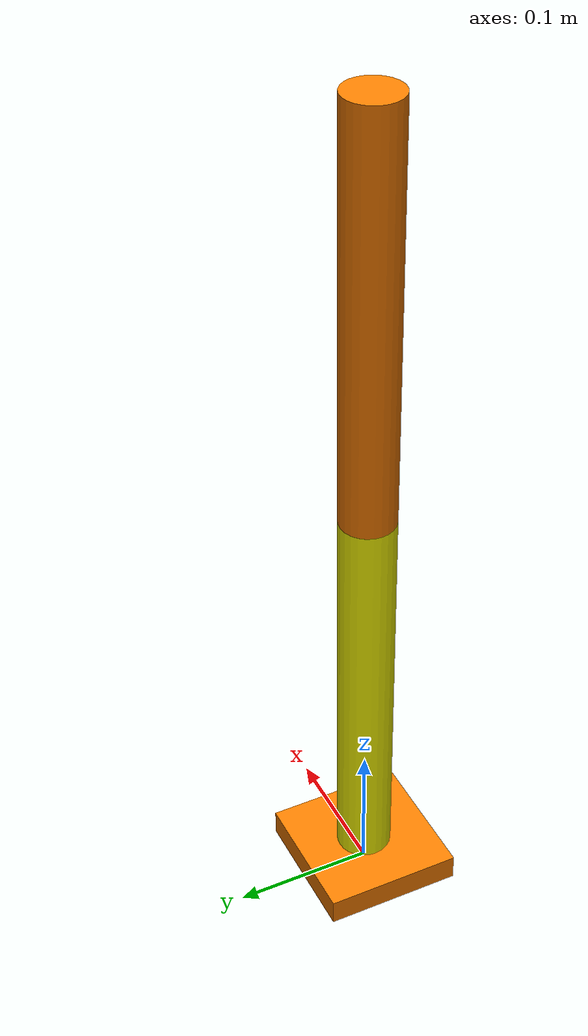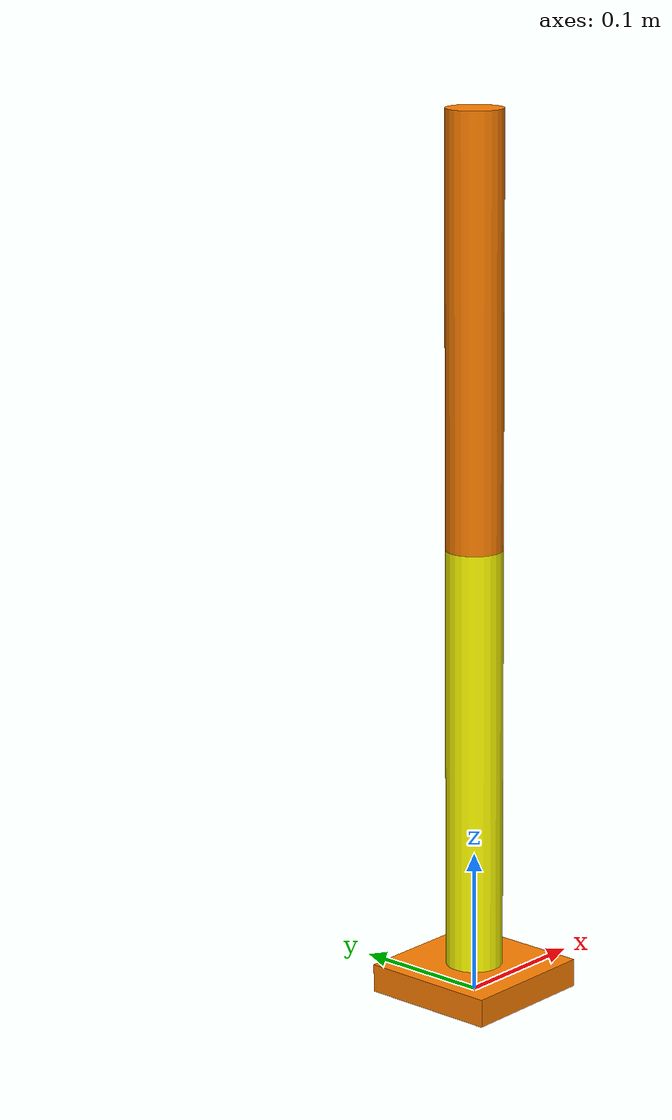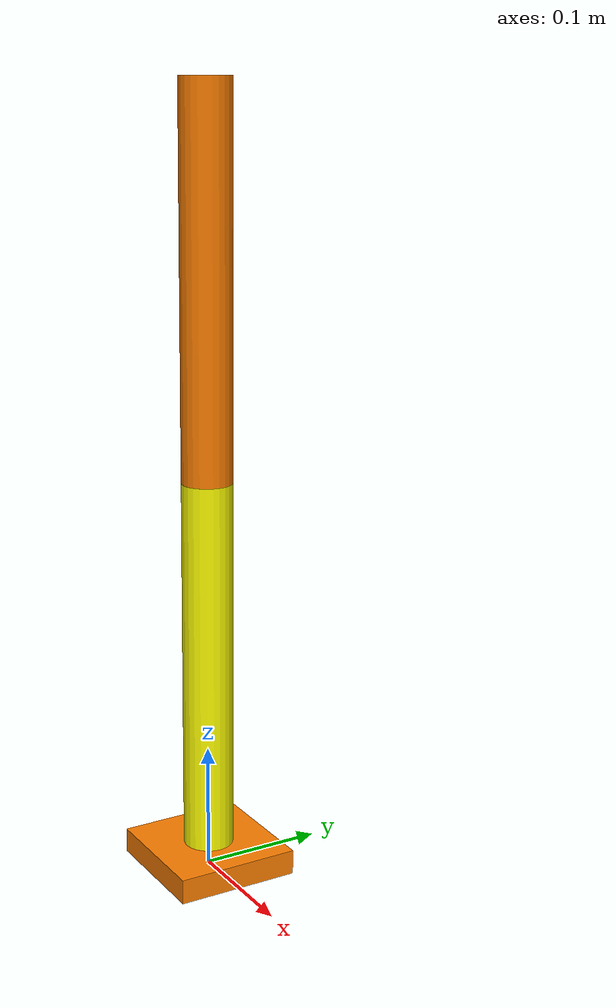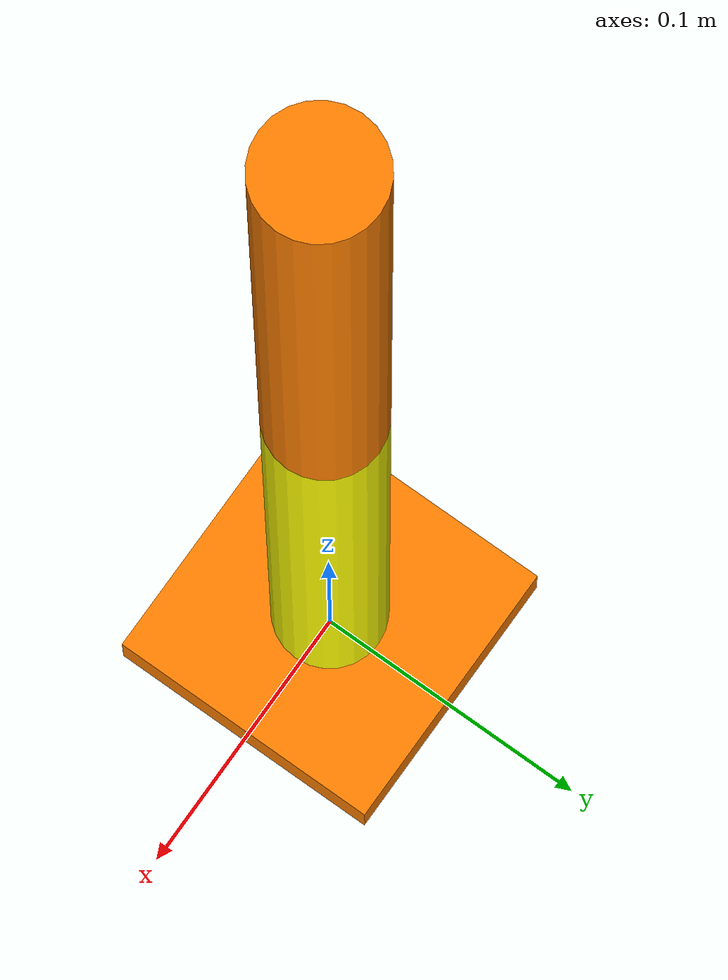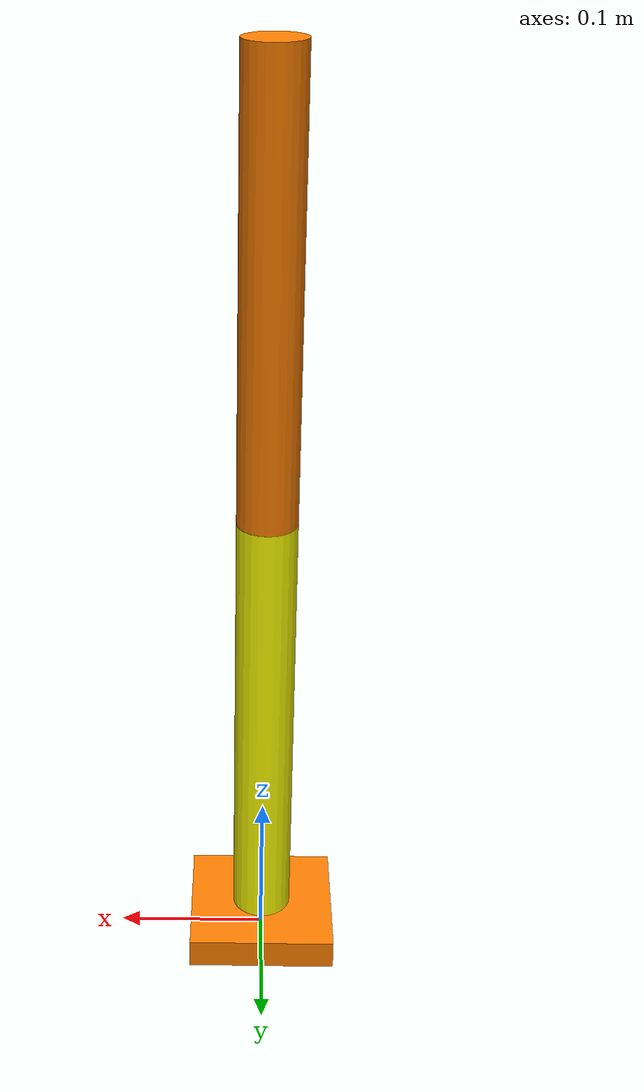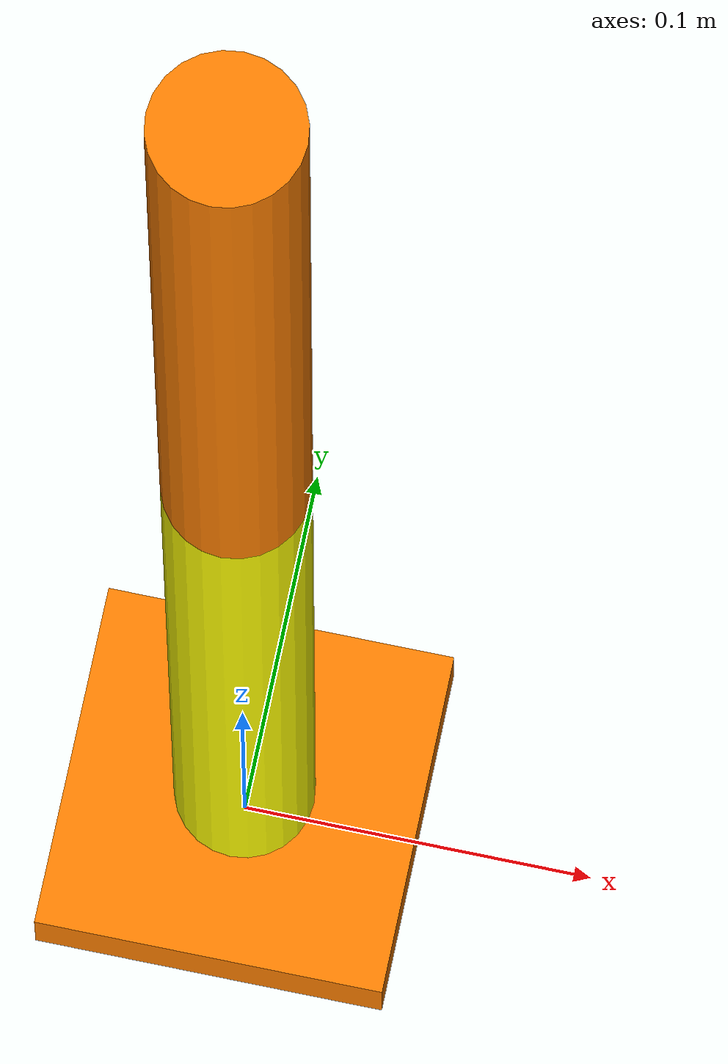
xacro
<?xml version="1.0"?>
<robot name="robot_arm" xmlns:xacro="http://www.ros.org/wiki/xacro">

    <xacro:include filename="common_properties.xacro" />
    <xacro:include filename="robot_arm.xacro" />

</robot>

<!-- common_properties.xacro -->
<robot xmlns:xacro="http://www.ros.org/wiki/xacro">

    <material name="blue">
        <color rgba="0 0 0.5 1" />
    </material>

    <material name="grey">
        <color rgba="0.5 0.5 0.5 1" />
    </material>

    <material name="orange">
        <color rgba="1.0 0.5 0.0 1" />
    </material>

    <material name="yellow">
        <color rgba="1.0 1.0 0.0 1" />
    </material>

    <xacro:macro name="box_inertia" params="m l w h xyz rpy">
        <inertial>
            <origin xyz="${xyz}" rpy="${rpy}" />
            <mass value="${m}" />
            <inertia ixx="${(m/12) * (h*h + l*l)}" ixy="0" ixz="0"
                     iyy="${(m/12) * (w*w + l*l)}" iyz="0"
                     izz="${(m/12) * (w*w + h*h)}" />
        </inertial>
    </xacro:macro>

    <xacro:macro name="cylinder_inertia" params="m r h xyz rpy">
        <inertial>
            <origin xyz="${xyz}" rpy="${rpy}" />
            <mass value="${m}" />
            <inertia ixx="${(m/12) * (3*r*r + h*h)}" ixy="0" ixz="0"
                     iyy="${(m/12) * (3*r*r + h*h)}" iyz="0"
                     izz="${(m/2) * (r*r)}" />
        </inertial>
    </xacro:macro>

    <xacro:macro name="sphere_inertia" params="m r xyz rpy">
        <inertial>
            <origin xyz="${xyz}" rpy="${rpy}" />
            <mass value="${m}" />
            <inertia ixx="${(2/5) * m * r * r}" ixy="0" ixz="0"
                     iyy="${(2/5) * m * r * r}" iyz="0"
                     izz="${(2/5) * m * r * r}" />
        </inertial>
    </xacro:macro>

</robot>

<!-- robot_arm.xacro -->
<robot xmlns:xacro="http://www.ros.org/wiki/xacro">

    <xacro:property name="arm_base_length" value="0.1" />
    <xacro:property name="arm_base_width" value="0.1" />
    <xacro:property name="arm_base_height" value="0.02" />
    <xacro:property name="forearm_radius" value="0.02" />
    <xacro:property name="forearm_length" value="0.3" />
    <xacro:property name="hand_radius" value="0.02" />
    <xacro:property name="hand_length" value="0.3" />

    <link name="arm_base_link">
        <visual>
            <geometry>
                <box size="${arm_base_length} ${arm_base_width} ${arm_base_height}" />
            </geometry>
            <origin xyz="0 0 ${arm_base_height/2.0}" rpy="0 0 0" />
            <material name="orange" />
        </visual>
        <collision>
            <geometry>
                <box size="${arm_base_length} ${arm_base_width} ${arm_base_height}" />
            </geometry>
            <origin xyz="0 0 ${arm_base_height/2.0}" rpy="0 0 0" />
        </collision>
        <xacro:box_inertia m="0.5" w="${2*arm_base_length}" h="${2*arm_base_width}" l="${2*arm_base_height}"
                           xyz="0 0 ${arm_base_height/2.0}" rpy="0 0 0" />
    </link>

    <link name="forearm_link">
        <visual>
            <geometry>
                <cylinder radius="${forearm_radius}" length="${forearm_length}" />
            </geometry>
            <origin xyz="0 0 ${forearm_length/2.0}" rpy="0 0 0" />
            <material name="yellow" />
        </visual>
        <collision>
            <geometry>
                <cylinder radius="${forearm_radius}" length="${forearm_length}" />
            </geometry>
            <origin xyz="0 0 ${forearm_length/2.0}" rpy="0 0 0" />
        </collision>
        <xacro:cylinder_inertia m="1.0" r="${forearm_radius}" h="${forearm_length}"
                                    xyz="0 0 ${forearm_length/2.0}" rpy="0 0 0" />
    </link>

    <link name="hand_link">
        <visual>
            <geometry>
                <cylinder radius="${hand_radius}" length="${hand_length}" />
            </geometry>
            <origin xyz="0 0 ${hand_length/2.0}" rpy="0 0 0" />
            <material name="orange" />
        </visual>
        <collision>
            <geometry>
                <cylinder radius="${hand_radius}" length="${hand_length}" />
            </geometry>
            <origin xyz="0 0 ${hand_length/2.0}" rpy="0 0 0" />
        </collision>
        <xacro:cylinder_inertia m="1.0" r="${hand_radius}" h="${hand_length}"
                                    xyz="0 0 ${hand_length/2.0}" rpy="0 0 0" />
    </link>

    <joint name="arm_base_forearm_joint" type="revolute">
        <parent link="arm_base_link" />
        <child link="forearm_link" />
        <origin xyz="0 0 ${arm_base_height}" rpy="0 0 0" />
        <axis xyz="0 1 0" />
        <limit lower="0" upper="${pi/2.0}" effort="0" velocity="100"/>
    </joint>

    <joint name="forearm_hand_joint" type="revolute">
        <parent link="forearm_link" />
        <child link="hand_link" />
        <origin xyz="0 0 ${forearm_length}" rpy="0 0 0" />
        <axis xyz="0 1 0" />
        <limit lower="0" upper="${pi/2.0}" effort="0" velocity="100"/>
    </joint>

    <gazebo>

        <plugin
            filename="ignition-gazebo-joint-state-publisher-system"
            name="ignition::gazebo::systems::JointStatePublisher">
            <joint_name>arm_base_forearm_joint</joint_name>
            <joint_name>forearm_hand_joint</joint_name>
            <topic>joint_states</topic>
            <update_rate>10</update_rate>
        </plugin>

        <plugin
            filename="libignition-gazebo-pose-publisher-system"
            name="ignition::gazebo::systems::PosePublisher">
            <publish_link_pose>true</publish_link_pose>
            <topic>pose</topic>
            <use_pose_vector_msg>true</use_pose_vector_msg>
            <static_publisher>true</static_publisher>
            <static_update_frequency>2</static_update_frequency>
        </plugin>

        <plugin
            filename="libignition-gazebo-joint-trajectory-controller-system.so"
            name="ignition::gazebo::systems::JointTrajectoryController">
            <joint_name>arm_base_forearm_joint</joint_name>
            <joint_name>forearm_hand_joint</joint_name>
            <topic>trajectory_control</topic>
            <update_rate>20</update_rate>
        </plugin>

    </gazebo>

</robot>
